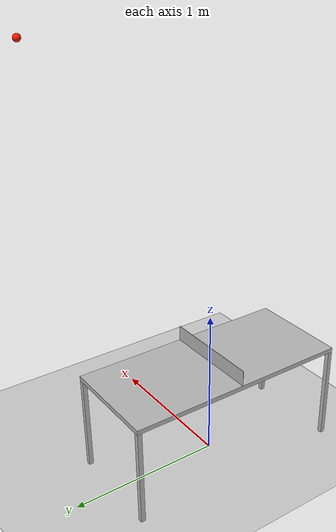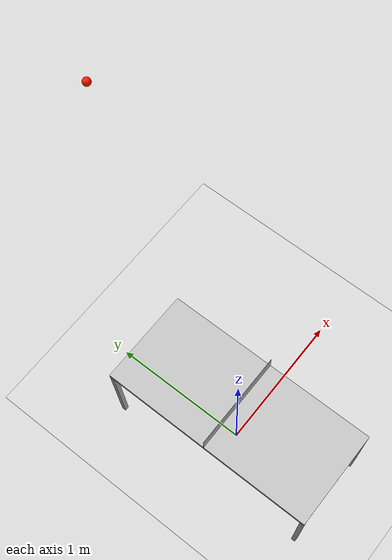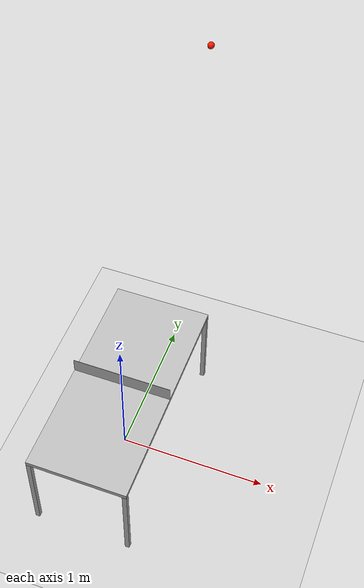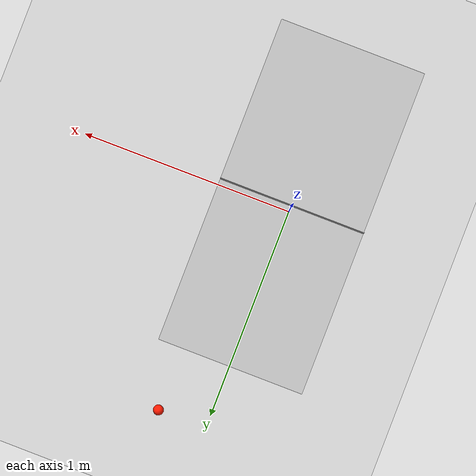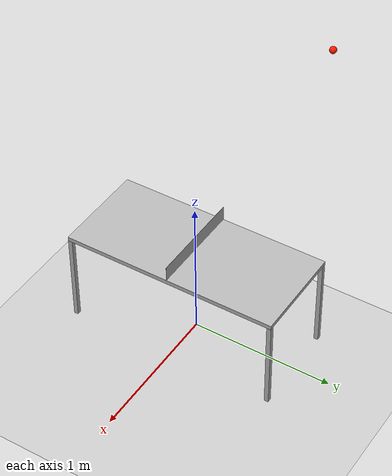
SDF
<sdf version="1.7">
 <world name="default">
  <light name="sun" type="directional">
   <pose>0 0 10 0 -0 0</pose>
   <diffuse>0.8 0.8 0.8 1</diffuse>
   <specular>0.2 0.2 0.2 1</specular>
   <attenuation>
    <range>1000</range>
    <constant>0.9</constant>
    <linear>0.01</linear>
    <quadratic>0.001</quadratic>
   </attenuation>
   <direction>-0.5 0.1 -0.9</direction>
   <spot><inner_angle>0</inner_angle><outer_angle>0</outer_angle><falloff>0</falloff></spot>
  </light>
  <model name="ground_plane">
   <static>1</static>
   <link name="link">
    <collision name="collision">
     <geometry><plane><normal>0 0 1</normal><size>100 100</size></plane></geometry>
     <surface><friction><ode><mu>100</mu><mu2>50</mu2></ode></friction></surface>
    </collision>
    <visual name="visual">
     <cast_shadows>0</cast_shadows>
     <geometry><plane><normal>0 0 1</normal><size>100 100</size></plane></geometry>
     <material>
      <script><uri>file://media/materials/scripts/gazebo.material</uri><name>Gazebo/Grey</name></script>
     </material>
    </visual>
   </link>
  </model>
  <gravity>0 0 -9.8</gravity>
  <magnetic_field>6e-06 2.3e-05 -4.2e-05</magnetic_field>
  <atmosphere type="adiabatic"/>
  <physics type="ode">
   <max_step_size>0.001</max_step_size>
   <real_time_factor>1</real_time_factor>
   <real_time_update_rate>1000</real_time_update_rate>
  </physics>
  <scene><ambient>0.4 0.4 0.4 1</ambient><background>0.7 0.7 0.7 1</background><shadows>1</shadows></scene>
  <spherical_coordinates>
   <surface_model>EARTH_WGS84</surface_model>
   <latitude_deg>0</latitude_deg>
   <longitude_deg>0</longitude_deg>
   <elevation>0</elevation>
   <heading_deg>0</heading_deg>
  </spherical_coordinates>
  <model name="table">
   <static>1</static>
   <link name="table">
    <pose>0 0 0.665 0 -0 0</pose>
    <collision name="board_collision">
     <geometry><box><size>0.67 1.5 0.03</size></box></geometry>
     <surface>
      <friction>
       <ode><mu>0.25</mu><mu2>0.25</mu2><fdir1>0 0 0</fdir1><slip1>0</slip1><slip2>0</slip2></ode>
       <torsional>
        <coefficient>1</coefficient>
        <patch_radius>0</patch_radius>
        <surface_radius>0</surface_radius>
        <use_patch_radius>1</use_patch_radius>
        <ode><slip>0</slip></ode>
       </torsional>
      </friction>
     </surface>
    </collision>
    <visual name="board_visual"><geometry><box><size>0.67 1.5 0.03</size></box></geometry></visual>
    <collision name="leg_1_collision">
     <pose>0.32 -0.735 -0.34 0 -0 0</pose>
     <geometry><box><size>0.03 0.03 0.65</size></box></geometry>
    </collision>
    <visual name="leg_1_visual">
     <pose>0.32 -0.735 -0.34 0 -0 0</pose>
     <geometry><box><size>0.03 0.03 0.65</size></box></geometry>
    </visual>
    <collision name="leg_2_collision">
     <pose>-0.32 -0.735 -0.34 0 -0 0</pose>
     <geometry><box><size>0.03 0.03 0.65</size></box></geometry>
    </collision>
    <visual name="leg_2_visual">
     <pose>-0.32 -0.735 -0.34 0 -0 0</pose>
     <geometry><box><size>0.03 0.03 0.65</size></box></geometry>
    </visual>
    <collision name="leg_3_collision">
     <pose>-0.32 0.735 -0.34 0 -0 0</pose>
     <geometry><box><size>0.03 0.03 0.65</size></box></geometry>
    </collision>
    <visual name="leg_3_visual">
     <pose>-0.32 0.735 -0.34 0 -0 0</pose>
     <geometry><box><size>0.03 0.03 0.65</size></box></geometry>
    </visual>
    <collision name="leg_4_collision">
     <pose>0.32 0.735 -0.34 0 -0 0</pose>
     <geometry><box><size>0.03 0.03 0.65</size></box></geometry>
    </collision>
    <visual name="leg_4_visual">
     <pose>0.32 0.735 -0.34 0 -0 0</pose>
     <geometry><box><size>0.03 0.03 0.65</size></box></geometry>
    </visual>
    <collision name="net_collision">
     <pose>0 0 0.0675 0 -0 0</pose>
     <geometry><box><size>0.67 0.002 0.105</size></box></geometry>
    </collision>
    <visual name="net_visual">
     <pose>0 0 0.0675 0 -0 0</pose>
     <geometry><box><size>0.67 0.002 0.105</size></box></geometry>
    </visual>
   </link>
  </model>
  <model name="ball">
   <link name="link_1">
    <inertial>
     <mass>0.0027</mass>
     <inertia><ixx>0.00027</ixx><ixy>0</ixy><ixz>0</ixz><iyy>0.00027</iyy><iyz>0</iyz><izz>0.00027</izz></inertia>
     <pose>0 0 2 0 -0 0</pose>
    </inertial>
    <pose>0.2 0.975 0.7 0 -0 0</pose>
    <visual name="visual">
     <pose>0 0 2 0 -0 0</pose>
     <geometry><sphere><radius>0.02</radius></sphere></geometry>
     <material>
      <lighting>1</lighting>
      <script><uri>file://media/materials/scripts/gazebo.material</uri><name>Gazebo/Grey</name></script>
      <shader type="pixel"><normal_map>__default__</normal_map></shader>
      <ambient>1.0 0.1 0.0 1</ambient>
      <diffuse>1.0 0.1 0.0 1</diffuse>
      <specular>1.0 0.1 0.0 1</specular>
      <emissive>1.0 0.1 0.0 1</emissive>
     </material>
    </visual>
    <collision name="collision">
     <pose>0 0 2 0 -0 0</pose>
     <geometry><sphere><radius>0.02</radius></sphere></geometry>
     <surface>
      <friction>
       <ode><mu>0.001</mu><mu2>0.001</mu2><fdir1>0 0 0</fdir1><slip1>0</slip1><slip2>0</slip2></ode>
       <torsional>
        <coefficient>1</coefficient>
        <patch_radius>0</patch_radius>
        <surface_radius>0</surface_radius>
        <use_patch_radius>1</use_patch_radius>
        <ode><slip>0</slip></ode>
       </torsional>
      </friction>
      <bounce><restitution_coefficient>0.9</restitution_coefficient><threshold>0.5</threshold></bounce>
      <contact>
       <collide_without_contact>0</collide_without_contact>
       <collide_without_contact_bitmask>1</collide_without_contact_bitmask>
       <collide_bitmask>1</collide_bitmask>
       <ode>
        <soft_cfm>0</soft_cfm>
        <soft_erp>0.2</soft_erp>
        <kp>1e+13</kp>
        <kd>1</kd>
        <max_vel>10</max_vel>
        <min_depth>0</min_depth>
       </ode>
       <bullet>
        <split_impulse>1</split_impulse>
        <split_impulse_penetration_threshold>-0.01</split_impulse_penetration_threshold>
        <soft_cfm>0</soft_cfm>
        <soft_erp>0.2</soft_erp>
        <kp>1e+13</kp>
        <kd>1</kd>
       </bullet>
      </contact>
     </surface>
    </collision>
   </link>
   <static>0</static>
  </model>
 </world>
</sdf>
